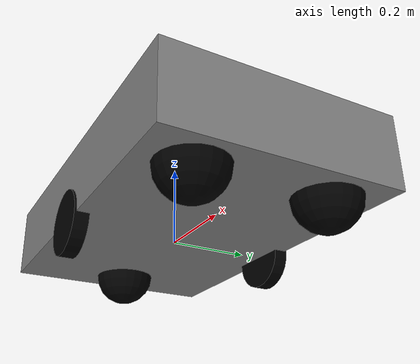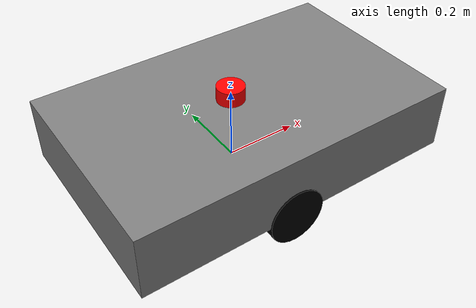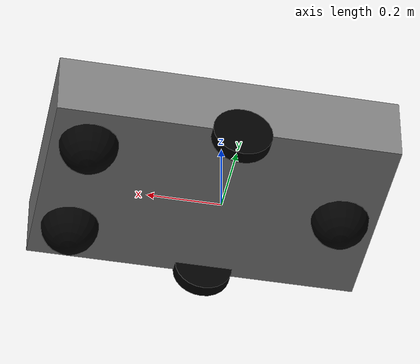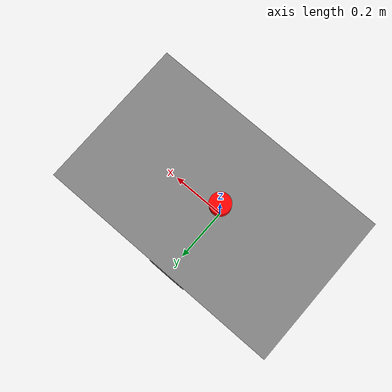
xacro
<?xml version="1.0"?>
<robot xmlns:xacro="http://www.ros.org/wiki/xacro"  name="robot">

    <xacro:arg name="use_ros2_control" default="true"/>
    <xacro:arg name="sim_mode" default="false"/>

    <xacro:include filename="robot_core.xacro" />

    <xacro:if value="$(arg use_ros2_control)">
        <xacro:include filename="ros2_control.xacro"/>
    </xacro:if>
    <xacro:unless value="$(arg use_ros2_control)">
        <xacro:include filename="gazebo_control.xacro"/>
    </xacro:unless>

    <xacro:include filename="lidar.xacro"/>

</robot>

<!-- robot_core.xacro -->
<robot xmlns:xacro="http://www.ros.org/wiki/xacro" >

    <xacro:include filename="inertial_macros.xacro"/>

    <material name="gray">
        <color rgba="0.5 0.5 0.5 1" />
    </material>

    <material name="black">
        <color rgba="0 0 0 1" />
    </material>

    <material name="red">
        <color rgba="1 0 0 1" />
    </material>

    <!-- BASE LINK -->

    <link name="base_link">

    </link>

    <!-- CHASSIS LINK -->

    <joint name="chassis_joint" type="fixed">
        <parent link="base_link"/>
        <child link="chassis"/>
        <origin xyz="-0.42 0 0"/>
    </joint>

    <link name="chassis">
        <visual>
            <origin xyz="0.45 0 0.09"/>
            <geometry>
                <box size="0.9 0.56 0.18"/>
            </geometry>

            <material name="gray"/>
        </visual>

        <collision>
            <origin xyz="0.45 0 0.09"/>
            <geometry>
                <box size="0.9 0.56 0.18"/>
            </geometry>
        </collision>
        <xacro:inertial_box mass="20" x="0.9" y="0.56" z="0.18">
            <origin xyz="0.45 0 0.09" rpy="0 0 0"/>
        </xacro:inertial_box>
    </link>

    <gazebo reference="chassis">
        <material>Gazebo/gray</material>
    </gazebo>

    <!-- LEFT WHEEL LINK -->

    <joint name="left_wheel_joint" type="continuous">
        <parent link="base_link"/>
        <child link="left_wheel"/>
        <origin xyz="0 0.2675 0" rpy="-${pi/2} 0 0"/>
        <axis xyz="0 0 1"/>
    </joint>

    <link name="left_wheel">
        <visual>
            <geometry>
                <cylinder radius="0.078" length="0.035"/>
            </geometry>

            <material name="black"/>
        </visual>

        <collision>
            <geometry>
                <cylinder radius="0.078" length="0.035"/>
            </geometry>
        </collision>

        <xacro:inertial_cylinder mass="1" length="0.035" radius="0.078">
            <origin xyz="0 0 0" rpy="0 0 0"/>
        </xacro:inertial_cylinder>

    </link>

    <gazebo reference="left_wheel">
        <material>Gazebo/black</material>
    </gazebo>

    <!-- RIGHT WHEEL LINK -->

    <joint name="right_wheel_joint" type="continuous">
        <parent link="base_link"/>
        <child link="right_wheel"/>
        <origin xyz="0 -0.2675 0" rpy="${pi/2} 0 0"/>
        <axis xyz="0 0 -1"/>
    </joint>

    <link name="right_wheel">
        <visual>
            <geometry>
                <cylinder radius="0.078" length="0.035"/>
            </geometry>

            <material name="black"/>
        </visual>

        <collision>
            <geometry>
                <cylinder radius="0.078" length="0.035"/>
            </geometry>
        </collision>

        <xacro:inertial_cylinder mass="1" length="0.035" radius="0.078">
            <origin xyz="0 0 0" rpy="0 0 0"/>
        </xacro:inertial_cylinder>

    </link>

    <gazebo reference="right_wheel">
        <material>Gazebo/black</material>
    </gazebo>

    <!-- BACK CASTER WHEEL LINK -->
    <joint name="back_caster_wheel_joint" type="fixed">
        <parent link="chassis"/>
        <child link="caster_wheel_back"/>
        <origin xyz="0.10 0 0" />
    </joint>

    <link name="caster_wheel_back">
        <visual>
            <geometry>
                <sphere radius="0.078"/>
            </geometry>
            <material name="black"/>
        </visual>

        <collision>
            <geometry>
                <sphere radius="0.078"/>
            </geometry>
        </collision>

        <xacro:inertial_sphere mass="1" radius="0.078">
            <origin xyz="0 0 0" rpy="0 0 0"/>
        </xacro:inertial_sphere>
    </link>

    <gazebo reference="caster_wheel_back">
        <material>Gazebo/black</material>
        <mu1 value="0.001"/>
        <mu2 value="0.001"/>
    </gazebo>

        <!-- RIGHT CASTER WHEEL LINK -->
    <joint name="right_caster_wheel_joint" type="fixed">
        <parent link="chassis"/>
        <child link="caster_wheel_front_right"/>
        <origin xyz="0.80 0.16 0" />
    </joint>

    <link name="caster_wheel_front_right">
        <visual>
            <geometry>
                <sphere radius="0.078"/>
            </geometry>
            <material name="black"/>
        </visual>

        <collision>
            <geometry>
                <sphere radius="0.078"/>
            </geometry>
        </collision>

        <xacro:inertial_sphere mass="1" radius="0.078">
            <origin xyz="0 0 0" rpy="0 0 0"/>
        </xacro:inertial_sphere>
    </link>

    <gazebo reference="caster_wheel_front_right">
        <material>Gazebo/black</material>
        <mu1 value="0.001"/>
        <mu2 value="0.001"/>
    </gazebo>

        <!-- LEFT CASTER WHEEL LINK -->
    <joint name="left_caster_wheel_joint" type="fixed">
        <parent link="chassis"/>
        <child link="caster_wheel_front_left"/>
        <origin xyz="0.80 -0.16 0" />
    </joint>

    <link name="caster_wheel_front_left">
        <visual>
            <geometry>
                <sphere radius="0.078"/>
            </geometry>
            <material name="black"/>
        </visual>

        <collision>
            <geometry>
                <sphere radius="0.078"/>
            </geometry>
        </collision>

        <xacro:inertial_sphere mass="1" radius="0.078">
            <origin xyz="0 0 0" rpy="0 0 0"/>
        </xacro:inertial_sphere>
    </link>

    <gazebo reference="caster_wheel_front_left">
        <material>Gazebo/black</material>
        <mu1 value="0.001"/>
        <mu2 value="0.001"/>
    </gazebo>

</robot>

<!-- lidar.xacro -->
<robot xmlns:xacro="http://www.ros.org/wiki/xacro"  name="robot">

    <joint name="laser_joint" type="fixed">
        <parent link="chassis"/>
        <child link="laser_frame"/>
        <origin xyz="0.42 0 0.20" rpy="0 0 0"/>
    </joint>

    <link name="laser_frame">
        <visual>
            <geometry>
                <cylinder radius="0.0375" length="0.0425"/>
            </geometry>

            <material name="red"/>
        </visual>

        <collision>
            <geometry>
                <cylinder radius="0.0375" length="0.0425"/>
            </geometry>
        </collision>

        <xacro:inertial_cylinder mass="0.2" length="0.0425" radius="0.0375">
            <origin xyz="0 0 0" rpy="0 0 0"/>
        </xacro:inertial_cylinder>
    </link>

    <gazebo reference="laser_frame">
        <material>Gazebo/Red</material>

        <sensor name="laser" type="gpu_lidar">
            <pose> 0 0 0 0 0 0 </pose>
            <visualize>true</visualize>
            <update_rate>10</update_rate>
            <lidar>
                <scan>
                    <horizontal>
                        <samples>360</samples>
                        <min_angle>-2.356</min_angle>
                        <max_angle>2.356</max_angle>
                    </horizontal>
                </scan>
                <range>
                    <min>0.05</min>
                    <max>40</max>
                </range>
            </lidar>
            <topic>scan</topic>
             <gz_frame_id>laser_frame</gz_frame_id>
        </sensor>
    </gazebo>

</robot>
